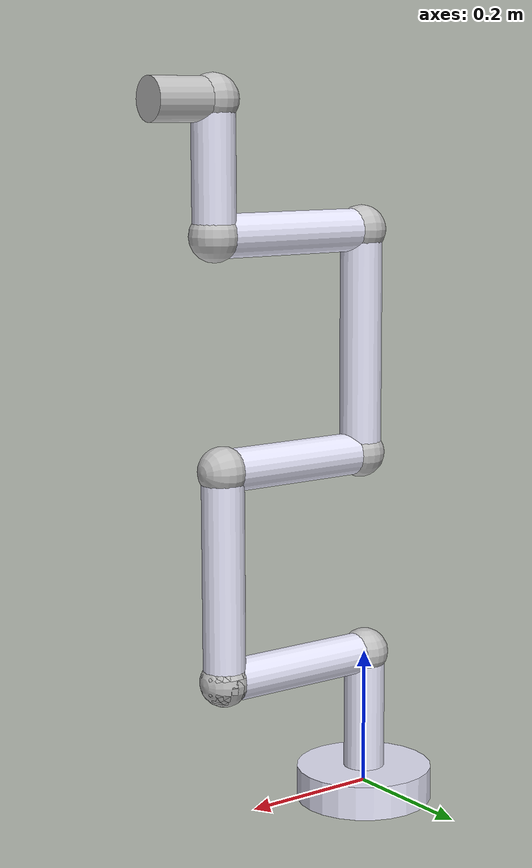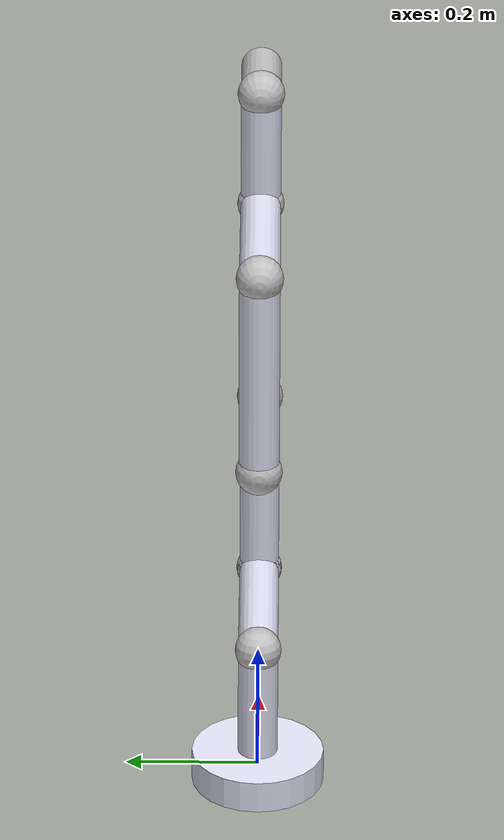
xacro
<?xml version="1.0" ?>
<robot name="six-axis" xmlns:ros2_control="http://www.ros.org/wiki/ros2_control">

    <material name="gray">
        <color rgba="0.75 0.75 0.75 1.0"/>
    </material>

    <material name="silver">
        <color rgba="0.9 0.9 0.98 1.0"/>
    </material>

    <!-- Base Link -->
    <link name="base_link">
    </link>

    <joint name="j0" type="fixed">
        <origin rpy="0.0 0.0 0.0" xyz="0.0 0.0 0.0"/>
        <parent link="base_link"/>
        <child link="l0"/>
        <axis xyz="0.0 0.0 0.0"/>
        <limit effort="0.0" lower="0.0" upper="0.0" velocity="0.0"/>
    </joint>

    <link name="l0">
        <inertial>
            <origin xyz="0 0 0.025"/>
            <mass value="12.0"/>
            <inertia
                ixx="0.004" ixy="0.0" ixz="0.0"
                iyy="0.004" iyz="0.0"
                izz="0.003"/>
        </inertial>

        <visual>
            <geometry>
                <cylinder length="0.05" radius="0.1"/>
            </geometry>
            <origin rpy="0.0 0.0 0.0" xyz="0.0 0.0 0.0"/>
            <material name="silver"/>
        </visual>
        <collision>
            <geometry>
                <cylinder length="0.05" radius="0.1"/>
            </geometry>
            <origin rpy="0.0 0.0 0.0" xyz="0.0 0.0 0.0"/>
        </collision>
    </link>

    <joint name="j1" type="revolute">
        <origin rpy="0.0 0.0 0.0" xyz="0.0 0.0 0.0"/>
        <parent link="l0"/>
        <child link="l1"/>
        <axis xyz="0.0 0.0 1.0"/>
        <limit effort="20.0" lower="-6.283185307179586" upper="6.283185307179586" velocity="2.0"/>
        <dynamics damping="0.2" friction="0.05"/>
    </joint>

    <link name="l1">
        <inertial>
        <origin xyz="0 0 0.1"/>
        <mass value="2.5"/>
        <inertia
            ixx="0.010" ixy="0.0" ixz="0.0"
            iyy="0.010" iyz="0.0"
            izz="0.006"/>
        </inertial>

        <visual>
            <geometry>
                <cylinder length="0.2" radius="0.03"/>
            </geometry>
            <origin rpy="0.0 0.0 0.0" xyz="0.0 0.0 0.1"/>
            <material name="silver"/>
        </visual>
        <visual>
            <geometry>
                <sphere radius="0.035"/>
            </geometry>
            <origin rpy="0.0 0.0 0.0" xyz="0.0 0.0 0.2"/>
            <material name="gray"/>
        </visual>
        <collision>
            <geometry>
                <cylinder length="0.2" radius="0.03"/>
            </geometry>
            <origin rpy="0.0 0.0 0.0" xyz="0.0 0.0 0.1"/>
        </collision>
        <collision>
            <geometry>
                <sphere radius="0.035"/>
            </geometry>
            <origin rpy="0.0 0.0 0.0" xyz="0.0 0.0 0.2"/>
        </collision>
    </link>

  <!-- Dummy l1 and l2 -->
  <joint name="j_dummy_1_2" type="fixed">
    <origin rpy="0.0 0.0 0.0" xyz="0.0 0.0 0.2"/>
    <parent link="l1"/>
    <child link="l2"/>
  </joint>

  <link name="l2">
    <inertial>
    <origin xyz="0.125 0 0"/>
    <mass value="3.0"/>
    <inertia
        ixx="0.022" ixy="0.0" ixz="0.0"
        iyy="0.030" iyz="0.0"
        izz="0.015"/>
    </inertial>

    <visual>
      <geometry>
        <cylinder length="0.25" radius="0.03"/>
      </geometry>
      <origin rpy="0.0 1.5707963267948966 0.0" xyz="0.125 0.0 0.0"/>
      <material name="silver"/>
    </visual>
    <visual>
      <geometry>
        <sphere radius="0.035"/>
      </geometry>
      <origin rpy="0.0 0.0 0.0" xyz="0.25 0.0 0.0"/>
      <material name="gray"/>
    </visual>
    <collision>
      <geometry>
        <cylinder length="0.25" radius="0.03"/>
      </geometry>
      <origin rpy="0.0 1.5707963267948966 0.0" xyz="0.125 0.0 0.0"/>
    </collision>
    <collision>
      <geometry>
        <sphere radius="0.035"/>
      </geometry>
      <origin rpy="0.0 0.0 0.0" xyz="0.25 0.0 0.0"/>
    </collision>
  </link>

  <joint name="j2" type="revolute">
    <origin rpy="0.0 1.5707963267948966 0.0" xyz="0.25 0.0 0.0"/>
    <parent link="l2"/>
    <child link="l3"/>
    <axis xyz="0.0 0.0 1.0"/>
    <limit effort="20.0" lower="-1.5707963267948966" upper="1.5707963267948966" velocity="2.0"/>
    <dynamics damping="0.2" friction="0.05"/>

  </joint>

  <link name="l3">
    <inertial>
    <origin xyz="-0.15 0 0"/>
    <mass value="2.5"/>
    <inertia
        ixx="0.015" ixy="0.0" ixz="0.0"
        iyy="0.020" iyz="0.0"
        izz="0.010"/>
    </inertial>

    <visual>
      <geometry>
        <cylinder length="0.3" radius="0.03"/>
      </geometry>
      <origin rpy="0.0 1.5707963267948966 0.0" xyz="-0.15 0.0 0.0"/>
      <material name="silver"/>
    </visual>
    <visual>
      <geometry>
        <sphere radius="0.035"/>
      </geometry>
      <origin rpy="0.0 0.0 0.0" xyz="0.0 0.0 0.0"/>
      <material name="gray"/>
    </visual>
    <collision>
      <geometry>
        <cylinder length="0.3" radius="0.03"/>
      </geometry>
      <origin rpy="0.0 1.5707963267948966 0.0" xyz="-0.15 0.0 0.0"/>
    </collision>
    <collision>
      <geometry>
        <sphere radius="0.035"/>
      </geometry>
      <origin rpy="0.0 0.0 0.0" xyz="0.0 0.0 0.0"/>
    </collision>
  </link>

  <joint name="j3" type="revolute">
    <origin rpy="0.0 0.0 0.0" xyz="-0.30 0.0 0.0"/>
    <parent link="l3"/>
    <child link="l4"/>
    <axis xyz="0.0 0.0 1.0"/>
    <limit effort="20.0" lower="-1.5707963267948966" upper="1.5707963267948966" velocity="2.0"/>
    <dynamics damping="0.2" friction="0.05"/>

  </joint>

  <link name="l4">
    <inertial>
    <origin xyz="0 0 -0.12"/>
    <mass value="1.2"/>
    <inertia
        ixx="0.004" ixy="0.0" ixz="0.0"
        iyy="0.006" iyz="0.0"
        izz="0.003"/>
    </inertial>

    <visual>
      <geometry>
        <cylinder length="0.24" radius="0.03"/>
      </geometry>
      <origin rpy="0.0 0.0 0.0" xyz="0.0 0.0 -0.12"/>
      <material name="silver"/>
    </visual>
    <visual>
      <geometry>
        <sphere radius="0.035"/>
      </geometry>
      <origin rpy="0.0 0.0 0.0" xyz="0.0 0.0 0.0"/>
      <material name="gray"/>
    </visual>
    <collision>
      <geometry>
        <cylinder length="0.24" radius="0.03"/>
      </geometry>
      <origin rpy="0.0 0.0 0.0" xyz="0.0 0.0 -0.12"/>
    </collision>
    <collision>
      <geometry>
        <sphere radius="0.035"/>
      </geometry>
      <origin rpy="0.0 0.0 0.0" xyz="0.0 0.0 0.0"/>
    </collision>
  </link>

  <!-- Dummy l4 and l5 -->
  <joint name="j_dummy" type="fixed">
    <origin rpy="0.0 0.0 0.0" xyz="0.0 0.0 -0.24"/>
    <parent link="l4"/>
    <child link="l5"/>
  </joint>

  <link name="l5">
    <inertial>
    <origin xyz="-0.16 0 0"/>
    <mass value="1.0"/>
    <inertia
        ixx="0.003" ixy="0.0" ixz="0.0"
        iyy="0.004" iyz="0.0"
        izz="0.002"/>
    </inertial>

    <visual>
      <geometry>
        <cylinder length="0.32" radius="0.03"/>
      </geometry>
      <origin rpy="0.0 1.5707963267948966 0.0" xyz="-0.16 0.0 0.0"/>
      <material name="silver"/>
    </visual>
    <visual>
      <geometry>
        <sphere radius="0.035"/>
      </geometry>
      <origin rpy="0.0 0.0 0.0" xyz="0.0 0.0 0.0"/>
      <material name="gray"/>
    </visual>
    <collision>
      <geometry>
        <cylinder length="0.32" radius="0.03"/>
      </geometry>
      <origin rpy="0.0 1.5707963267948966 0.0" xyz="-0.16 0.0 0.0"/>
    </collision>
    <collision>
      <geometry>
        <sphere radius="0.035"/>
      </geometry>
      <origin rpy="0.0 0.0 0.0" xyz="0.0 0.0 0.0"/>
    </collision>
  </link>

  <joint name="j4" type="revolute">
    <origin rpy="0.0 0.0 0.0" xyz="-0.32 0.0 0.0"/>
    <parent link="l5"/>
    <child link="l6"/>
    <axis xyz="0.0 0.0 1.0"/>
    <limit effort="20.0" lower="-1.5707963267948966" upper="1.5707963267948966" velocity="2.0"/>
    <dynamics damping="0.2" friction="0.05"/>

  </joint>

  <link name="l6">
    <inertial>
    <origin xyz="0 0 0.125"/>
    <mass value="0.8"/>
    <inertia
        ixx="0.002" ixy="0.0" ixz="0.0"
        iyy="0.002" iyz="0.0"
        izz="0.0015"/>
    </inertial>

    <visual>
      <geometry>
        <cylinder length="0.25" radius="0.03"/>
      </geometry>
      <origin rpy="0.0 0.0 0.0" xyz="0.0 0.0 0.125"/>
      <material name="silver"/>
    </visual>
    <visual>
      <geometry>
        <sphere radius="0.035"/>
      </geometry>
      <origin rpy="0.0 0.0 0.0" xyz="0.0 0.0 0.0"/>
      <material name="gray"/>
    </visual>
    <collision>
      <geometry>
        <cylinder length="0.25" radius="0.03"/>
      </geometry>
      <origin rpy="0.0 0.0 0.0" xyz="0.0 0.0 0.125"/>
    </collision>
    <collision>
      <geometry>
        <sphere radius="0.035"/>
      </geometry>
      <origin rpy="0.0 0.0 0.0" xyz="0.0 0.0 0.0"/>
    </collision>
  </link>

  <joint name="j5" type="revolute">
    <origin rpy="0.0 -1.5707963267948966 0.0" xyz="0.0 0.0 0.25"/>
    <parent link="l6"/>
    <child link="le"/>
    <axis xyz="0.0 0.0 1.0"/>
    <limit effort="20.0" lower="-3.141592653589793" upper="3.141592653589793" velocity="2.0"/>
    <dynamics damping="0.2" friction="0.05"/>

  </joint>

  <link name="le">
    <inertial>
    <origin xyz="0 0 0.09"/>
    <mass value="0.6"/>
    <inertia
        ixx="0.0015" ixy="0.0" ixz="0.0"
        iyy="0.0015" iyz="0.0"
        izz="0.0010"/>
    </inertial>

    <visual>
      <geometry>
        <cylinder length="0.18" radius="0.03"/>
      </geometry>
      <origin rpy="0.0 0.0 0.0" xyz="0.0 0.0 0.09"/>
      <material name="silver"/>
    </visual>
    <visual>
      <geometry>
        <sphere radius="0.035"/>
      </geometry>
      <origin rpy="0.0 0.0 0.0" xyz="0.0 0.0 0.0"/>
      <material name="gray"/>
    </visual>
    <collision>
      <geometry>
        <cylinder length="0.18" radius="0.03"/>
      </geometry>
      <origin rpy="0.0 0.0 0.0" xyz="0.0 0.0 0.09"/>
    </collision>
    <collision>
      <geometry>
        <sphere radius="0.035"/>
      </geometry>
      <origin rpy="0.0 0.0 0.0" xyz="0.0 0.0 0.0"/>
    </collision>
  </link>

  <joint name="j6" type="revolute">
    <origin rpy="0.0 1.5707963267948966 0.0" xyz="0.0 0.0 0.18"/>
    <parent link="le"/>
    <child link="le_1"/>
    <axis xyz="0.0 0.0 1.0"/>
    <limit effort="20.0" lower="-6.283185307179586" upper="6.283185307179586" velocity="2.0"/>
    <dynamics damping="0.2" friction="0.05"/>

  </joint>

  <link name="le_1">
    <inertial>
    <origin xyz="0 0 0.05"/>
    <mass value="0.4"/>
    <inertia
        ixx="0.0010" ixy="0.0" ixz="0.0"
        iyy="0.0010" iyz="0.0"
        izz="0.0007"/>
    </inertial>

    <visual>
      <geometry>
        <cylinder length="0.1" radius="0.03"/>
      </geometry>
      <origin rpy="0.0 0.0 0.0" xyz="0.0 0.0 0.05"/>
      <material name="gray"/>
    </visual>
    <visual>
      <geometry>
        <sphere radius="0.035"/>
      </geometry>
      <origin rpy="0.0 0.0 0.0" xyz="0.0 0.0 0.0"/>
      <material name="gray"/>
    </visual>
    <collision>
      <geometry>
        <cylinder length="0.1" radius="0.03"/>
      </geometry>
      <origin rpy="0.0 0.0 0.0" xyz="0.0 0.0 0.05"/>
    </collision>
    <collision>
      <geometry>
        <sphere radius="0.035"/>
      </geometry>
      <origin rpy="0.0 0.0 0.0" xyz="0.0 0.0 0.0"/>
    </collision>
  </link>

  <!-- Connect wrist to gripper base -->

  <!-- Gripper base -->

  <!-- Gripper Right Finger -->

  <!-- Gripper Left Finger -->

  <!-- Tool Center Point (TCP) / End Effector Frame -->

  <!-- Ros2_Control -->

  <!-- Gazebo Plugins -->

</robot>
